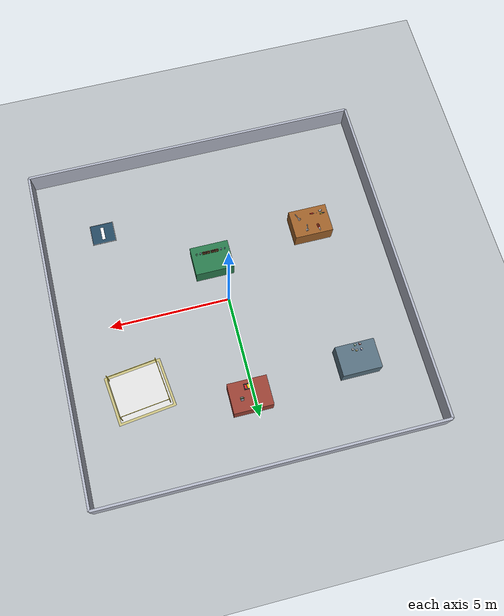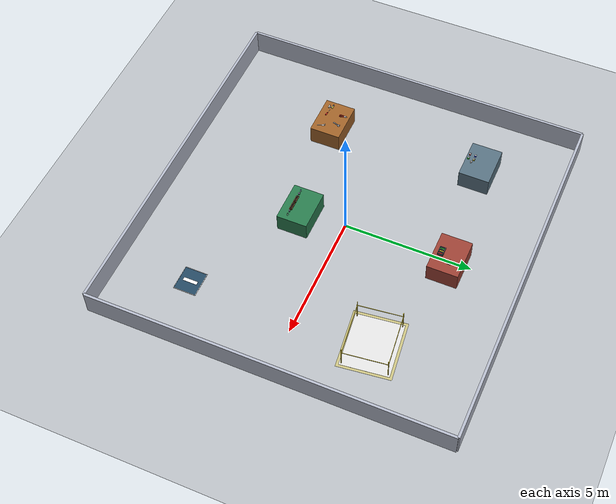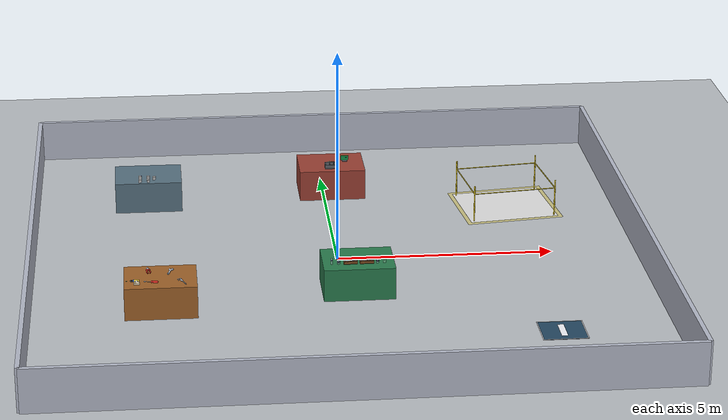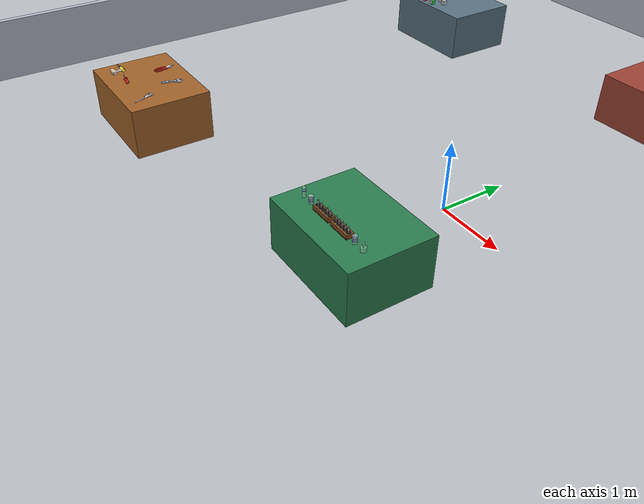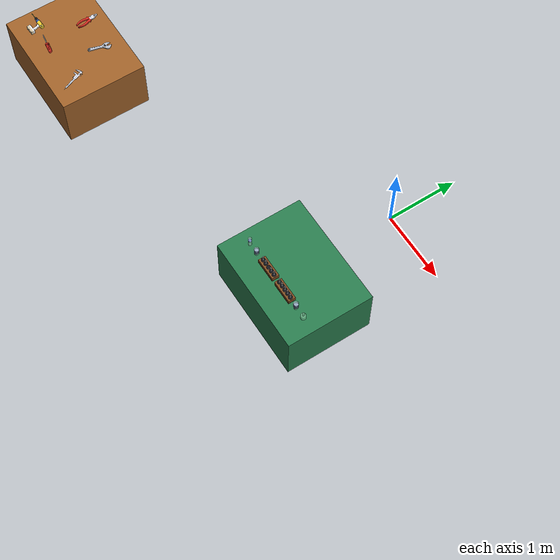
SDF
<?xml version="1.0"?>
<!--
  Lab standard environment (Gazebo Classic): five functional zones.
  Existing A->B chain is preserved at station_a / station_b while adding:
  inspection_zone, tooling_zone, and aging_zone.
-->
<sdf version="1.6">
  <world name="lab">
    <plugin name="gazebo_ros_state" filename="libgazebo_ros_state.so">
      <ros>
        <namespace>/gazebo</namespace>
      </ros>
      <update_rate>30.0</update_rate>
    </plugin>
    <plugin name="gazebo_ros_properties" filename="libgazebo_ros_properties.so">
      <ros>
        <namespace>/gazebo</namespace>
      </ros>
    </plugin>

    <light name="sun" type="directional">
      <cast_shadows>true</cast_shadows>
      <pose>0 0 10 0 0 0</pose>
      <diffuse>0.95 0.95 0.98 1</diffuse>
      <specular>0.90 0.90 0.92 1</specular>
      <direction>-0.28 0.24 -0.93</direction>
    </light>
    <scene>
      <ambient>0.42 0.44 0.46 1</ambient>
      <background>0.82 0.85 0.88 1</background>
      <shadows>true</shadows>
    </scene>

    <model name="ground_plane">
      <static>true</static>
      <link name="link">
        <collision name="collision">
          <geometry><plane><normal>0 0 1</normal><size>30 30</size></plane></geometry>
          <surface><friction><ode><mu>1.0</mu><mu2>1.0</mu2></ode></friction></surface>
        </collision>
        <visual name="visual">
          <geometry><plane><normal>0 0 1</normal><size>30 30</size></plane></geometry>
          <material>
            <ambient>0.58 0.60 0.62 1</ambient>
            <diffuse>0.72 0.74 0.76 1</diffuse>
            <specular>0.95 0.95 0.95 1</specular>
            <shininess>80</shininess>
          </material>
        </visual>
      </link>
    </model>

    <model name="walls">
      <static>true</static>
      <link name="link">
        <collision name="c_n"><pose>0 7 0.5 0 0 0</pose><geometry><box><size>14 0.1 1</size></box></geometry></collision>
        <visual name="v_n"><pose>0 7 0.5 0 0 0</pose><geometry><box><size>14 0.1 1</size></box></geometry><material><diffuse>0.70 0.72 0.78 1</diffuse></material></visual>
        <collision name="c_s"><pose>0 -7 0.5 0 0 0</pose><geometry><box><size>14 0.1 1</size></box></geometry></collision>
        <visual name="v_s"><pose>0 -7 0.5 0 0 0</pose><geometry><box><size>14 0.1 1</size></box></geometry><material><diffuse>0.70 0.72 0.78 1</diffuse></material></visual>
        <collision name="c_e"><pose>7 0 0.5 0 0 0</pose><geometry><box><size>0.1 14 1</size></box></geometry></collision>
        <visual name="v_e"><pose>7 0 0.5 0 0 0</pose><geometry><box><size>0.1 14 1</size></box></geometry><material><diffuse>0.70 0.72 0.78 1</diffuse></material></visual>
        <collision name="c_w"><pose>-7 0 0.5 0 0 0</pose><geometry><box><size>0.1 14 1</size></box></geometry></collision>
        <visual name="v_w"><pose>-7 0 0.5 0 0 0</pose><geometry><box><size>0.1 14 1</size></box></geometry><material><diffuse>0.70 0.72 0.78 1</diffuse></material></visual>
      </link>
    </model>

        <model name="station_a_table">
          <static>true</static>
          <pose>-4.30 3.80 0 0 0 0</pose>
          <link name="link">
            <collision name="collision">
              <pose>0 0 0.375 0 0 0</pose>
              <geometry><box><size>1.6 1.2 0.75</size></box></geometry>
              <surface><friction><ode><mu>1.0</mu><mu2>1.0</mu2></ode></friction></surface>
            </collision>
            <visual name="visual">
              <pose>0 0 0.375 0 0 0</pose>
              <geometry><box><size>1.6 1.2 0.75</size></box></geometry>
              <material>
                <ambient>0.22 0.28 0.33 1</ambient>
                <diffuse>0.34 0.44 0.50 1</diffuse>
                <specular>0.06 0.06 0.06 1</specular>
                <shininess>8</shininess>
              </material>
            </visual>
          </link>
        </model>

        <model name="tooling_zone_table">
          <static>true</static>
          <pose>-4.10 -2.30 0 0 0 0</pose>
          <link name="link">
            <collision name="collision">
              <pose>0 0 0.375 0 0 0</pose>
              <geometry><box><size>1.6 1.2 0.75</size></box></geometry>
              <surface><friction><ode><mu>1.0</mu><mu2>1.0</mu2></ode></friction></surface>
            </collision>
            <visual name="visual">
              <pose>0 0 0.375 0 0 0</pose>
              <geometry><box><size>1.6 1.2 0.75</size></box></geometry>
              <material>
                <ambient>0.36 0.24 0.10 1</ambient>
                <diffuse>0.62 0.38 0.16 1</diffuse>
                <specular>0.06 0.06 0.06 1</specular>
                <shininess>8</shininess>
              </material>
            </visual>
          </link>
        </model>

        <model name="aging_zone_table">
          <static>true</static>
          <pose>0.20 4.20 0 0 0 0</pose>
          <link name="link">
            <collision name="collision">
              <pose>0 0 0.375 0 0 0</pose>
              <geometry><box><size>1.6 1.2 0.75</size></box></geometry>
              <surface><friction><ode><mu>1.0</mu><mu2>1.0</mu2></ode></friction></surface>
            </collision>
            <visual name="visual">
              <pose>0 0 0.375 0 0 0</pose>
              <geometry><box><size>1.6 1.2 0.75</size></box></geometry>
              <material>
                <ambient>0.33 0.16 0.12 1</ambient>
                <diffuse>0.60 0.25 0.20 1</diffuse>
                <specular>0.06 0.06 0.06 1</specular>
                <shininess>8</shininess>
              </material>
            </visual>
          </link>
        </model>

        <model name="station_b_table">
          <static>true</static>
          <pose>0.30 -1.70 0 0 0 0</pose>
          <link name="link">
            <collision name="collision">
              <pose>0 0 0.375 0 0 0</pose>
              <geometry><box><size>1.6 1.2 0.75</size></box></geometry>
              <surface><friction><ode><mu>1.0</mu><mu2>1.0</mu2></ode></friction></surface>
            </collision>
            <visual name="visual">
              <pose>0 0 0.375 0 0 0</pose>
              <geometry><box><size>1.6 1.2 0.75</size></box></geometry>
              <material>
                <ambient>0.10 0.25 0.18 1</ambient>
                <diffuse>0.16 0.48 0.30 1</diffuse>
                <specular>0.06 0.06 0.06 1</specular>
                <shininess>8</shininess>
              </material>
            </visual>
          </link>
        </model>

        <model name="home_zone_pad">
          <static>true</static>
          <pose>4.50 -4.20 0 0 0 0</pose>
          <link name="link">
            <visual name="pad_fill">
              <pose>0 0 0.002 0 0 0</pose>
              <geometry><box><size>1.00 0.90 0.004</size></box></geometry>
              <material>
                <ambient>0.09 0.18 0.25 0.95</ambient>
                <diffuse>0.14 0.28 0.38 0.95</diffuse>
                <specular>0.04 0.04 0.04 1</specular>
              </material>
            </visual>
            <visual name="pad_border_n">
              <pose>0 0.44 0.004 0 0 0</pose>
              <geometry><box><size>1.00 0.02 0.008</size></box></geometry>
              <material><ambient>0.92 0.92 0.94 1</ambient><diffuse>0.96 0.96 0.98 1</diffuse></material>
            </visual>
            <visual name="pad_border_s">
              <pose>0 -0.44 0.004 0 0 0</pose>
              <geometry><box><size>1.00 0.02 0.008</size></box></geometry>
              <material><ambient>0.92 0.92 0.94 1</ambient><diffuse>0.96 0.96 0.98 1</diffuse></material>
            </visual>
            <visual name="pad_border_e">
              <pose>0.49 0 0.004 0 0 0</pose>
              <geometry><box><size>0.02 0.86 0.008</size></box></geometry>
              <material><ambient>0.92 0.92 0.94 1</ambient><diffuse>0.96 0.96 0.98 1</diffuse></material>
            </visual>
            <visual name="pad_border_w">
              <pose>-0.49 0 0.004 0 0 0</pose>
              <geometry><box><size>0.02 0.86 0.008</size></box></geometry>
              <material><ambient>0.92 0.92 0.94 1</ambient><diffuse>0.96 0.96 0.98 1</diffuse></material>
            </visual>
            <visual name="pad_centerline">
              <pose>0 0 0.004 0 0 0</pose>
              <geometry><box><size>0.14 0.56 0.008</size></box></geometry>
              <material><ambient>0.92 0.92 0.94 1</ambient><diffuse>0.96 0.96 0.98 1</diffuse></material>
            </visual>
          </link>
        </model>

    <include>
      <uri>model://aruco_sample</uri>
      <name>aruco_sample</name>
      <pose>-4.16 3.46 0.785 0 0 0.10</pose>
    </include>
    <include>
      <uri>model://material_cube_red</uri>
      <name>material_cube_red</name>
      <pose>-4.50 3.30 0.785 0 0 0</pose>
    </include>
    <include>
      <uri>model://material_cube_green</uri>
      <name>material_cube_green</name>
      <pose>-4.30 3.30 0.785 0 0 0</pose>
    </include>
    <include>
      <uri>model://material_cube_blue</uri>
      <name>material_cube_blue</name>
      <pose>-4.50 3.52 0.785 0 0 0</pose>
    </include>
    <include>
      <uri>model://material_cube_yellow</uri>
      <name>material_cube_yellow</name>
      <pose>-4.30 3.52 0.785 0 0 0</pose>
    </include>
    <include>
      <uri>model://fixture_box_plain</uri>
      <name>tooling_fixture_box</name>
      <pose>-3.88 -2.04 0.758 0 0 -0.28</pose>
    </include>
    <include>
      <uri>model://tooling_hand_tools</uri>
      <name>tooling_hand_tools</name>
      <pose>-4.36 -1.96 0.761 0 0 0.12</pose>
    </include>
    <include>
      <uri>model://pcb_test_fixture</uri>
      <name>board_test_fixture</name>
      <pose>-4.70 -2.60 0.7776 0 0 0.05</pose>
    </include>
    <include>
      <uri>model://safety_probe_kit</uri>
      <name>high_voltage_probe_kit</name>
      <pose>-4.30 -2.60 0.75 0 0 -0.15</pose>
    </include>
    <include>
      <uri>model://igbt_module_plain</uri>
      <name>material_spare_igbt</name>
      <pose>-3.62 -2.60 0.753 0 0 0.38</pose>
    </include>
    <include>
      <uri>model://aging_rack</uri>
      <name>aging_rack</name>
      <pose>0.20 3.88 0.80 0 0 0</pose>
    </include>
    <include>
      <uri>model://pcb_board</uri>
      <name>pcb_board</name>
      <pose>0.55 4.30 0.75 0 0 0</pose>
    </include>
    <include>
      <uri>model://test_tube_rack</uri>
      <name>test_tube_rack_1</name>
      <pose>0.48 -1.95 0.75 0 0 0</pose>
    </include>
    <include>
      <uri>model://test_tube_rack</uri>
      <name>test_tube_rack_2</name>
      <pose>0.12 -1.95 0.75 0 0 0</pose>
    </include>
    <include>
      <uri>model://test_tube</uri>
      <name>test_tube_1</name>
      <pose>0.36 -1.95 0.762 0 0 0</pose>
    </include>
    <include>
      <uri>model://test_tube</uri>
      <name>test_tube_2</name>
      <pose>0.42 -1.95 0.762 0 0 0</pose>
    </include>
    <include>
      <uri>model://test_tube</uri>
      <name>test_tube_3</name>
      <pose>0.48 -1.95 0.762 0 0 0</pose>
    </include>
    <include>
      <uri>model://test_tube</uri>
      <name>test_tube_4</name>
      <pose>0.54 -1.95 0.762 0 0 0</pose>
    </include>
    <include>
      <uri>model://test_tube</uri>
      <name>test_tube_5</name>
      <pose>0.60 -1.95 0.762 0 0 0</pose>
    </include>
    <include>
      <uri>model://test_tube</uri>
      <name>test_tube_6</name>
      <pose>0.00 -1.95 0.762 0 0 0</pose>
    </include>
    <include>
      <uri>model://test_tube</uri>
      <name>test_tube_7</name>
      <pose>0.06 -1.95 0.762 0 0 0</pose>
    </include>
    <include>
      <uri>model://test_tube</uri>
      <name>test_tube_8</name>
      <pose>0.18 -1.95 0.762 0 0 0</pose>
    </include>
    <include>
      <uri>model://test_tube</uri>
      <name>test_tube_9</name>
      <pose>0.24 -1.95 0.762 0 0 0</pose>
    </include>
    <include>
      <uri>model://graduated_cylinder</uri>
      <name>graduated_cylinder</name>
      <pose>-0.30 -1.95 0.82 0 0 0</pose>
    </include>
    <include>
      <uri>model://beaker</uri>
      <name>beaker_2</name>
      <pose>-0.15 -1.95 0.75 0 0 0</pose>
    </include>
    <include>
      <uri>model://beaker</uri>
      <name>beaker_1</name>
      <pose>0.72 -1.95 0.75 0 0 0</pose>
    </include>
    <include>
      <uri>model://erlenmeyer_flask</uri>
      <name>erlenmeyer_flask</name>
      <pose>0.88 -1.95 0.75 0 0 0</pose>
    </include>

    <include>
      <uri>model://high_voltage_zone</uri>
      <name>high_voltage_zone</name>
      <pose>4.36 2.90 0 0 0 0.12</pose>
    </include>

    <physics name="default_physics" type="ode">
      <max_step_size>0.001</max_step_size>
      <real_time_factor>1.0</real_time_factor>
      <real_time_update_rate>1000</real_time_update_rate>
    </physics>
  </world>
</sdf>

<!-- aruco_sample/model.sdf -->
<sdf version="1.6">
  <model name="aruco_sample">
    <link name="link">
      <inertial>
        <mass>0.05</mass>
        <inertia>
          <ixx>4.0e-5</ixx><ixy>0</ixy><ixz>0</ixz>
          <iyy>4.0e-5</iyy><iyz>0</iyz><izz>4.0e-5</izz>
        </inertia>
      </inertial>
      <collision name="collision">
        <geometry><box><size>0.07 0.07 0.07</size></box></geometry>
        <surface>
          <friction><ode><mu>1.0</mu><mu2>1.0</mu2></ode></friction>
          <contact>
            <ode>
              <kp>1e6</kp>
              <kd>1.0</kd>
              <min_depth>0.001</min_depth>
              <max_vel>0.01</max_vel>
            </ode>
          </contact>
        </surface>
      </collision>
      <visual name="body_visual">
        <geometry><box><size>0.07 0.07 0.07</size></box></geometry>
        <material>
          <ambient>0.85 0.85 0.85 1</ambient>
          <diffuse>0.85 0.85 0.85 1</diffuse>
        </material>
      </visual>
      <visual name="aruco_marker_front">
        <pose>0 -0.0355 0 0 0 0</pose>
        <geometry>
          <box><size>0.07 0.001 0.07</size></box>
        </geometry>
        <material>
          <script>
            <uri>model://aruco_sample/materials/scripts</uri>
            <uri>model://aruco_sample/materials/textures</uri>
            <name>ArucoSample/Marker</name>
          </script>
        </material>
      </visual>
      <visual name="aruco_marker_top">
        <pose>0 0 0.0355 0 0 0</pose>
        <geometry>
          <box><size>0.07 0.07 0.001</size></box>
        </geometry>
        <material>
          <script>
            <uri>model://aruco_sample/materials/scripts</uri>
            <uri>model://aruco_sample/materials/textures</uri>
            <name>ArucoSample/MarkerTop</name>
          </script>
        </material>
      </visual>
    </link>
  </model>
</sdf>

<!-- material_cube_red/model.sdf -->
<sdf version="1.6">
  <model name="material_cube_red">
    <link name="link">
      <inertial>
        <mass>0.05</mass>
        <inertia>
          <ixx>4.0e-5</ixx><ixy>0</ixy><ixz>0</ixz>
          <iyy>4.0e-5</iyy><iyz>0</iyz><izz>4.0e-5</izz>
        </inertia>
      </inertial>
      <collision name="collision">
        <geometry><box><size>0.07 0.07 0.07</size></box></geometry>
        <surface>
          <friction><ode><mu>1.0</mu><mu2>1.0</mu2></ode></friction>
          <contact>
            <ode>
              <kp>1e6</kp>
              <kd>1.0</kd>
              <min_depth>0.001</min_depth>
              <max_vel>0.01</max_vel>
            </ode>
          </contact>
        </surface>
      </collision>
      <visual name="body_visual">
        <geometry><box><size>0.07 0.07 0.07</size></box></geometry>
        <material>
          <ambient>0.92 0.10 0.10 1</ambient>
          <diffuse>0.92 0.10 0.10 1</diffuse>
        </material>
      </visual>
      <visual name="aruco_marker_front">
        <pose>0 -0.0355 0 0 0 0</pose>
        <geometry>
          <box><size>0.07 0.001 0.07</size></box>
        </geometry>
        <material>
          <script>
            <uri>model://material_cube_red/materials/scripts</uri>
            <uri>model://material_cube_red/materials/textures</uri>
            <name>MaterialCubeRed/Marker</name>
          </script>
        </material>
      </visual>
      <visual name="aruco_marker_top">
        <pose>0 0 0.0355 0 0 0</pose>
        <geometry>
          <box><size>0.07 0.07 0.001</size></box>
        </geometry>
        <material>
          <script>
            <uri>model://material_cube_red/materials/scripts</uri>
            <uri>model://material_cube_red/materials/textures</uri>
            <name>MaterialCubeRed/MarkerTop</name>
          </script>
        </material>
      </visual>
    </link>
  </model>
</sdf>

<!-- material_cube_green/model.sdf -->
<sdf version="1.6">
  <model name="material_cube_green">
    <link name="link">
      <inertial>
        <mass>0.05</mass>
        <inertia>
          <ixx>4.0e-5</ixx><ixy>0</ixy><ixz>0</ixz>
          <iyy>4.0e-5</iyy><iyz>0</iyz><izz>4.0e-5</izz>
        </inertia>
      </inertial>
      <collision name="collision">
        <geometry><box><size>0.07 0.07 0.07</size></box></geometry>
        <surface>
          <friction><ode><mu>1.0</mu><mu2>1.0</mu2></ode></friction>
          <contact>
            <ode>
              <kp>1e6</kp>
              <kd>1.0</kd>
              <min_depth>0.001</min_depth>
              <max_vel>0.01</max_vel>
            </ode>
          </contact>
        </surface>
      </collision>
      <visual name="body_visual">
        <geometry><box><size>0.07 0.07 0.07</size></box></geometry>
        <material>
          <ambient>0.10 0.85 0.15 1</ambient>
          <diffuse>0.10 0.85 0.15 1</diffuse>
        </material>
      </visual>
      <visual name="aruco_marker_front">
        <pose>0 -0.0355 0 0 0 0</pose>
        <geometry>
          <box><size>0.07 0.001 0.07</size></box>
        </geometry>
        <material>
          <script>
            <uri>model://material_cube_green/materials/scripts</uri>
            <uri>model://material_cube_green/materials/textures</uri>
            <name>MaterialCubeGreen/Marker</name>
          </script>
        </material>
      </visual>
      <visual name="aruco_marker_top">
        <pose>0 0 0.0355 0 0 0</pose>
        <geometry>
          <box><size>0.07 0.07 0.001</size></box>
        </geometry>
        <material>
          <script>
            <uri>model://material_cube_green/materials/scripts</uri>
            <uri>model://material_cube_green/materials/textures</uri>
            <name>MaterialCubeGreen/MarkerTop</name>
          </script>
        </material>
      </visual>
    </link>
  </model>
</sdf>

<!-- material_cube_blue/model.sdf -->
<sdf version="1.6">
  <model name="material_cube_blue">
    <link name="link">
      <inertial>
        <mass>0.05</mass>
        <inertia>
          <ixx>4.0e-5</ixx><ixy>0</ixy><ixz>0</ixz>
          <iyy>4.0e-5</iyy><iyz>0</iyz><izz>4.0e-5</izz>
        </inertia>
      </inertial>
      <collision name="collision">
        <geometry><box><size>0.07 0.07 0.07</size></box></geometry>
        <surface>
          <friction><ode><mu>1.0</mu><mu2>1.0</mu2></ode></friction>
          <contact>
            <ode>
              <kp>1e6</kp>
              <kd>1.0</kd>
              <min_depth>0.001</min_depth>
              <max_vel>0.01</max_vel>
            </ode>
          </contact>
        </surface>
      </collision>
      <visual name="body_visual">
        <geometry><box><size>0.07 0.07 0.07</size></box></geometry>
        <material>
          <ambient>0.10 0.15 0.90 1</ambient>
          <diffuse>0.10 0.15 0.90 1</diffuse>
        </material>
      </visual>
      <visual name="aruco_marker_front">
        <pose>0 -0.0355 0 0 0 0</pose>
        <geometry>
          <box><size>0.07 0.001 0.07</size></box>
        </geometry>
        <material>
          <script>
            <uri>model://material_cube_blue/materials/scripts</uri>
            <uri>model://material_cube_blue/materials/textures</uri>
            <name>MaterialCubeBlue/Marker</name>
          </script>
        </material>
      </visual>
      <visual name="aruco_marker_top">
        <pose>0 0 0.0355 0 0 0</pose>
        <geometry>
          <box><size>0.07 0.07 0.001</size></box>
        </geometry>
        <material>
          <script>
            <uri>model://material_cube_blue/materials/scripts</uri>
            <uri>model://material_cube_blue/materials/textures</uri>
            <name>MaterialCubeBlue/MarkerTop</name>
          </script>
        </material>
      </visual>
    </link>
  </model>
</sdf>

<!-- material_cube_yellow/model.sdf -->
<sdf version="1.6">
  <model name="material_cube_yellow">
    <link name="link">
      <inertial>
        <mass>0.05</mass>
        <inertia>
          <ixx>4.0e-5</ixx><ixy>0</ixy><ixz>0</ixz>
          <iyy>4.0e-5</iyy><iyz>0</iyz><izz>4.0e-5</izz>
        </inertia>
      </inertial>
      <collision name="collision">
        <geometry><box><size>0.07 0.07 0.07</size></box></geometry>
        <surface>
          <friction><ode><mu>1.0</mu><mu2>1.0</mu2></ode></friction>
          <contact>
            <ode>
              <kp>1e6</kp>
              <kd>1.0</kd>
              <min_depth>0.001</min_depth>
              <max_vel>0.01</max_vel>
            </ode>
          </contact>
        </surface>
      </collision>
      <visual name="body_visual">
        <geometry><box><size>0.07 0.07 0.07</size></box></geometry>
        <material>
          <ambient>0.92 0.85 0.10 1</ambient>
          <diffuse>0.92 0.85 0.10 1</diffuse>
        </material>
      </visual>
      <visual name="aruco_marker_front">
        <pose>0 -0.0355 0 0 0 0</pose>
        <geometry>
          <box><size>0.07 0.001 0.07</size></box>
        </geometry>
        <material>
          <script>
            <uri>model://material_cube_yellow/materials/scripts</uri>
            <uri>model://material_cube_yellow/materials/textures</uri>
            <name>MaterialCubeYellow/Marker</name>
          </script>
        </material>
      </visual>
      <visual name="aruco_marker_top">
        <pose>0 0 0.0355 0 0 0</pose>
        <geometry>
          <box><size>0.07 0.07 0.001</size></box>
        </geometry>
        <material>
          <script>
            <uri>model://material_cube_yellow/materials/scripts</uri>
            <uri>model://material_cube_yellow/materials/textures</uri>
            <name>MaterialCubeYellow/MarkerTop</name>
          </script>
        </material>
      </visual>
    </link>
  </model>
</sdf>

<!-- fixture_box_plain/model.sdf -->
<sdf version="1.6">
  <model name="fixture_box_plain">
    <link name="link">
      <inertial><mass>1.28</mass><inertia><ixx>0.01216</ixx><ixy>0</ixy><ixz>0</ixz><iyy>0.00256</iyy><iyz>0</iyz><izz>0.01408</izz></inertia></inertial>
      <collision name="collision"><pose>0 0 0.092 0 0 0</pose><geometry><mesh><uri>model://fixture_box_plain/meshes/adjustable_wrench.dae</uri><scale>2 2 2</scale></mesh></geometry><surface><friction><ode><mu>1.0</mu><mu2>1.0</mu2></ode></friction><contact><ode><kp>1e6</kp><kd>1.0</kd><min_depth>0.001</min_depth><max_vel>0.01</max_vel></ode></contact></surface></collision>
      <visual name="imported_tool_mesh"><pose>0 0 0.092 0 0 0</pose><geometry><mesh><uri>model://fixture_box_plain/meshes/adjustable_wrench.dae</uri><scale>2 2 2</scale></mesh></geometry></visual>
    </link>
  </model>
</sdf>

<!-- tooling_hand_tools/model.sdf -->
<sdf version="1.6">
  <model name="tooling_hand_tools">
    <link name="link">
      <inertial><mass>1.12</mass><inertia><ixx>0.01152</ixx><ixy>0</ixy><ixz>0</ixz><iyy>0.00256</iyy><iyz>0</iyz><izz>0.01344</izz></inertia></inertial>
      <collision name="collision"><pose>0 0 -0.011 0 0 0</pose><geometry><mesh><uri>model://tooling_hand_tools/meshes/pliers_closed.dae</uri><scale>2 2 2</scale></mesh></geometry><surface><friction><ode><mu>1.0</mu><mu2>1.0</mu2></ode></friction><contact><ode><kp>1e6</kp><kd>1.0</kd><min_depth>0.001</min_depth><max_vel>0.01</max_vel></ode></contact></surface></collision>
      <visual name="imported_tool_mesh"><pose>0 0 -0.011 0 0 0</pose><geometry><mesh><uri>model://tooling_hand_tools/meshes/pliers_closed.dae</uri><scale>2 2 2</scale></mesh></geometry></visual>
    </link>
  </model>
</sdf>

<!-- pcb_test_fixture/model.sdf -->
<sdf version="1.6">
  <model name="pcb_test_fixture">
    <link name="link">
      <inertial><mass>3.60</mass><inertia><ixx>0.02400</ixx><ixy>0</ixy><ixz>0</ixz><iyy>0.03840</iyy><iyz>0</iyz><izz>0.04640</izz></inertia></inertial>
      <collision name="collision"><pose>0 0 -0.0276 0 0 0</pose><geometry><mesh><uri>model://pcb_test_fixture/meshes/drill.dae</uri><scale>2 2 2</scale></mesh></geometry><surface><friction><ode><mu>1.0</mu><mu2>1.0</mu2></ode></friction><contact><ode><kp>1e6</kp><kd>1.0</kd><min_depth>0.001</min_depth><max_vel>0.01</max_vel></ode></contact></surface></collision>
      <visual name="imported_tool_mesh"><pose>0 0 -0.0276 0 0 0</pose><geometry><mesh><uri>model://pcb_test_fixture/meshes/drill.dae</uri><scale>2 2 2</scale></mesh></geometry></visual>
    </link>
  </model>
</sdf>

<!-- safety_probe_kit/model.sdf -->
<sdf version="1.6">
  <model name="safety_probe_kit">
    <link name="link">
      <inertial><mass>0.64</mass><inertia><ixx>0.00160</ixx><ixy>0</ixy><ixz>0</ixz><iyy>0.00768</iyy><iyz>0</iyz><izz>0.00768</izz></inertia></inertial>
      <collision name="collision"><geometry><mesh><uri>model://safety_probe_kit/meshes/screwdriver.dae</uri><scale>2 2 2</scale></mesh></geometry><surface><friction><ode><mu>1.0</mu><mu2>1.0</mu2></ode></friction><contact><ode><kp>1e6</kp><kd>1.0</kd><min_depth>0.001</min_depth><max_vel>0.01</max_vel></ode></contact></surface></collision>
      <visual name="imported_tool_mesh"><geometry><mesh><uri>model://safety_probe_kit/meshes/screwdriver.dae</uri><scale>2 2 2</scale></mesh></geometry></visual>
    </link>
  </model>
</sdf>

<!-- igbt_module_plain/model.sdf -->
<sdf version="1.6">
  <model name="igbt_module_plain">
    <link name="link">
      <inertial><mass>0.96</mass><inertia><ixx>0.01120</ixx><ixy>0</ixy><ixz>0</ixz><iyy>0.00256</iyy><iyz>0</iyz><izz>0.01344</izz></inertia></inertial>
      <collision name="collision"><pose>0 0 0.057 0 0 0</pose><geometry><mesh><uri>model://igbt_module_plain/meshes/digital_caliper.dae</uri><scale>2 2 2</scale></mesh></geometry><surface><friction><ode><mu>1.0</mu><mu2>1.0</mu2></ode></friction><contact><ode><kp>1e6</kp><kd>1.0</kd><min_depth>0.001</min_depth><max_vel>0.01</max_vel></ode></contact></surface></collision>
      <visual name="imported_tool_mesh"><pose>0 0 0.057 0 0 0</pose><geometry><mesh><uri>model://igbt_module_plain/meshes/digital_caliper.dae</uri><scale>2 2 2</scale></mesh></geometry></visual>
    </link>
  </model>
</sdf>

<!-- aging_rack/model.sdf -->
<sdf version="1.6">
  <model name="aging_rack">
    <static>true</static>
    <link name="link">
      <!-- 空心三槽架:薄底板 + 四周墙 + 两块隔板。 -->
      <collision name="collision_bottom">
        <pose>0 0 -0.04 0 0 0</pose>
        <geometry><box><size>0.34 0.22 0.02</size></box></geometry>
        <surface><friction><ode><mu>1.0</mu><mu2>1.0</mu2></ode></friction></surface>
      </collision>
      <collision name="collision_wall_front">
        <pose>0 0.10 0.01 0 0 0</pose>
        <geometry><box><size>0.34 0.02 0.08</size></box></geometry>
        <surface><friction><ode><mu>1.0</mu><mu2>1.0</mu2></ode></friction></surface>
      </collision>
      <collision name="collision_wall_back">
        <pose>0 -0.10 0.01 0 0 0</pose>
        <geometry><box><size>0.34 0.02 0.08</size></box></geometry>
        <surface><friction><ode><mu>1.0</mu><mu2>1.0</mu2></ode></friction></surface>
      </collision>
      <collision name="collision_wall_left">
        <pose>-0.16 0 0.01 0 0 0</pose>
        <geometry><box><size>0.02 0.18 0.08</size></box></geometry>
        <surface><friction><ode><mu>1.0</mu><mu2>1.0</mu2></ode></friction></surface>
      </collision>
      <collision name="collision_wall_right">
        <pose>0.16 0 0.01 0 0 0</pose>
        <geometry><box><size>0.02 0.18 0.08</size></box></geometry>
        <surface><friction><ode><mu>1.0</mu><mu2>1.0</mu2></ode></friction></surface>
      </collision>
      <collision name="collision_divider_left">
        <pose>-0.0525 0 0.01 0 0 0</pose>
        <geometry><box><size>0.015 0.18 0.08</size></box></geometry>
        <surface><friction><ode><mu>1.0</mu><mu2>1.0</mu2></ode></friction></surface>
      </collision>
      <collision name="collision_divider_right">
        <pose>0.0525 0 0.01 0 0 0</pose>
        <geometry><box><size>0.015 0.18 0.08</size></box></geometry>
        <surface><friction><ode><mu>1.0</mu><mu2>1.0</mu2></ode></friction></surface>
      </collision>
      <visual name="base_bottom">
        <pose>0 0 -0.04 0 0 0</pose>
        <geometry><box><size>0.34 0.22 0.02</size></box></geometry>
        <material><ambient>0.20 0.20 0.22 1</ambient><diffuse>0.36 0.38 0.40 1</diffuse></material>
      </visual>
      <visual name="wall_front">
        <pose>0 0.10 0.01 0 0 0</pose>
        <geometry><box><size>0.34 0.02 0.08</size></box></geometry>
        <material><ambient>0.20 0.20 0.22 1</ambient><diffuse>0.36 0.38 0.40 1</diffuse></material>
      </visual>
      <visual name="wall_back">
        <pose>0 -0.10 0.01 0 0 0</pose>
        <geometry><box><size>0.34 0.02 0.08</size></box></geometry>
        <material><ambient>0.20 0.20 0.22 1</ambient><diffuse>0.36 0.38 0.40 1</diffuse></material>
      </visual>
      <visual name="wall_left">
        <pose>-0.16 0 0.01 0 0 0</pose>
        <geometry><box><size>0.02 0.18 0.08</size></box></geometry>
        <material><ambient>0.20 0.20 0.22 1</ambient><diffuse>0.36 0.38 0.40 1</diffuse></material>
      </visual>
      <visual name="wall_right">
        <pose>0.16 0 0.01 0 0 0</pose>
        <geometry><box><size>0.02 0.18 0.08</size></box></geometry>
        <material><ambient>0.20 0.20 0.22 1</ambient><diffuse>0.36 0.38 0.40 1</diffuse></material>
      </visual>
      <visual name="divider_left">
        <pose>-0.0525 0 0.01 0 0 0</pose>
        <geometry><box><size>0.015 0.18 0.08</size></box></geometry>
        <material><ambient>0.20 0.20 0.22 1</ambient><diffuse>0.36 0.38 0.40 1</diffuse></material>
      </visual>
      <visual name="divider_right">
        <pose>0.0525 0 0.01 0 0 0</pose>
        <geometry><box><size>0.015 0.18 0.08</size></box></geometry>
        <material><ambient>0.20 0.20 0.22 1</ambient><diffuse>0.36 0.38 0.40 1</diffuse></material>
      </visual>
      <visual name="slot_left">
        <pose>-0.105 0 -0.028 0 0 0</pose>
        <geometry><box><size>0.088 0.176 0.004</size></box></geometry>
        <material><ambient>0.08 0.70 0.12 1</ambient><diffuse>0.12 0.90 0.18 1</diffuse></material>
      </visual>
      <visual name="slot_mid">
        <pose>0 0 -0.028 0 0 0</pose>
        <geometry><box><size>0.088 0.176 0.004</size></box></geometry>
        <material><ambient>0.70 0.60 0.08 1</ambient><diffuse>0.95 0.82 0.12 1</diffuse></material>
      </visual>
      <visual name="slot_right">
        <pose>0.105 0 -0.028 0 0 0</pose>
        <geometry><box><size>0.088 0.176 0.004</size></box></geometry>
        <material><ambient>0.74 0.10 0.10 1</ambient><diffuse>0.92 0.16 0.16 1</diffuse></material>
      </visual>
      <visual name="status_panel">
        <pose>0 0.111 0.03 1.57079 0 0</pose>
        <geometry><box><size>0.20 0.05 0.002</size></box></geometry>
        <material><ambient>0.88 0.88 0.88 1</ambient><diffuse>0.92 0.92 0.92 1</diffuse></material>
      </visual>
      <visual name="status_green">
        <pose>-0.05 0.112 0.05 1.57079 0 0</pose>
        <geometry><cylinder><radius>0.015</radius><length>0.003</length></cylinder></geometry>
        <material><ambient>0.08 0.70 0.12 1</ambient><diffuse>0.12 0.90 0.18 1</diffuse></material>
      </visual>
      <visual name="status_yellow">
        <pose>0.0 0.112 0.05 1.57079 0 0</pose>
        <geometry><cylinder><radius>0.015</radius><length>0.003</length></cylinder></geometry>
        <material><ambient>0.70 0.60 0.08 1</ambient><diffuse>0.95 0.82 0.12 1</diffuse></material>
      </visual>
      <visual name="status_red">
        <pose>0.05 0.112 0.05 1.57079 0 0</pose>
        <geometry><cylinder><radius>0.015</radius><length>0.003</length></cylinder></geometry>
        <material><ambient>0.74 0.10 0.10 1</ambient><diffuse>0.92 0.16 0.16 1</diffuse></material>
      </visual>
    </link>
  </model>
</sdf>

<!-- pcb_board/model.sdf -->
<sdf version="1.6">
  <!-- 板卡(可抓取):PCB 板面 + 底部支撑脚自立,金手指视觉,板厚 0.008 < 夹爪开度可侧向夹取。 -->
  <model name="pcb_board">
    <link name="link">
      <inertial>
        <mass>0.08</mass>
        <inertia>
          <ixx>1.8e-4</ixx><ixy>0</ixy><ixz>0</ixz>
          <iyy>1.6e-4</iyy><iyz>0</iyz><izz>3.0e-4</izz>
        </inertia>
      </inertial>
      <!-- 底部支撑脚(自立) -->
      <collision name="collision_base">
        <pose>0 0 0.0075 0 0 0</pose>
        <geometry><box><size>0.12 0.16 0.015</size></box></geometry>
        <surface>
          <friction><ode><mu>1.0</mu><mu2>1.0</mu2></ode></friction>
          <contact>
            <ode>
              <kp>1e6</kp>
              <kd>1.0</kd>
              <min_depth>0.001</min_depth>
              <max_vel>0.01</max_vel>
            </ode>
          </contact>
        </surface>
      </collision>
      <visual name="visual_base">
        <pose>0 0 0.0075 0 0 0</pose>
        <geometry><box><size>0.12 0.16 0.015</size></box></geometry>
        <material>
          <ambient>0.25 0.25 0.28 1</ambient>
          <diffuse>0.42 0.44 0.48 1</diffuse>
          <specular>0.15 0.15 0.15 1</specular>
          <shininess>24</shininess>
        </material>
      </visual>
      <!-- PCB 板面(立起,朝 ±y) -->
      <collision name="collision_board">
        <pose>0 0 0.078 0 0 0</pose>
        <geometry><box><size>0.18 0.008 0.12</size></box></geometry>
        <surface>
          <friction><ode><mu>1.0</mu><mu2>1.0</mu2></ode></friction>
          <contact>
            <ode>
              <kp>1e6</kp>
              <kd>1.0</kd>
              <min_depth>0.001</min_depth>
              <max_vel>0.01</max_vel>
            </ode>
          </contact>
        </surface>
      </collision>
      <visual name="visual_board">
        <pose>0 0 0.078 0 0 0</pose>
        <geometry><box><size>0.18 0.008 0.12</size></box></geometry>
        <material>
          <ambient>0.05 0.35 0.18 1</ambient>
          <diffuse>0.08 0.55 0.28 1</diffuse>
          <specular>0.15 0.15 0.15 1</specular>
          <shininess>32</shininess>
        </material>
      </visual>
      <!-- 金手指条(顶缘视觉) -->
      <visual name="visual_gold_fingers">
        <pose>0 0 0.1385 0 0 0</pose>
        <geometry><box><size>0.18 0.010 0.012</size></box></geometry>
        <material>
          <ambient>0.78 0.62 0.20 1</ambient>
          <diffuse>0.95 0.78 0.28 1</diffuse>
          <specular>0.4 0.4 0.4 1</specular>
          <shininess>64</shininess>
        </material>
      </visual>
      <!-- 板面元件小凸起(视觉) -->
      <visual name="visual_component">
        <pose>0.04 0 0.09 0 0 0</pose>
        <geometry><box><size>0.03 0.012 0.015</size></box></geometry>
        <material>
          <ambient>0.10 0.10 0.12 1</ambient>
          <diffuse>0.18 0.18 0.20 1</diffuse>
        </material>
      </visual>
    </link>
  </model>
</sdf>

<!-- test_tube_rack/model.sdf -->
<sdf version="1.6">
  <!-- 试管架(静态环境道具):木块钻圆孔造型。
       视觉 = 实木块 + 5 个深色圆形孔口,呈现经典"木块圆孔"试管架;
       碰撞 = 隐藏内部的方形导孔(前/后墙 + 4 隔墙 + 2 端板),稳定引导外径 0.022 的玻璃试管下插。 -->
  <model name="test_tube_rack">
    <static>true</static>
    <link name="link">
      <!-- 底座板(顶面 z=0.012,试管即落于此) -->
      <collision name="collision_base">
        <pose>0 0 0.006 0 0 0</pose>
        <geometry><box><size>0.31 0.10 0.012</size></box></geometry>
        <surface>
          <friction><ode><mu>1.0</mu><mu2>1.0</mu2></ode></friction>
        </surface>
      </collision>
      <visual name="visual_base">
        <pose>0 0 0.006 0 0 0</pose>
        <geometry><box><size>0.31 0.10 0.012</size></box></geometry>
        <material>
          <ambient>0.30 0.18 0.07 1</ambient>
          <diffuse>0.50 0.30 0.13 1</diffuse>
          <specular>0.10 0.10 0.10 1</specular>
          <shininess>8</shininess>
        </material>
      </visual>

      <!-- ── 碰撞:木块内的方形导孔结构(z 中心 0.037,高 0.050) ── -->
      <!-- 前墙(y∈[0.022,0.050]) -->
      <collision name="collision_wall_front">
        <pose>0 0.036 0.037 0 0 0</pose>
        <geometry><box><size>0.31 0.028 0.050</size></box></geometry>
        <surface><friction><ode><mu>1.0</mu><mu2>1.0</mu2></ode></friction></surface>
      </collision>
      <!-- 后墙(y∈[-0.050,-0.022]) -->
      <collision name="collision_wall_back">
        <pose>0 -0.036 0.037 0 0 0</pose>
        <geometry><box><size>0.31 0.028 0.050</size></box></geometry>
        <surface><friction><ode><mu>1.0</mu><mu2>1.0</mu2></ode></friction></surface>
      </collision>
      <!-- 4 条隔墙,分隔 5 个导孔 -->
      <collision name="collision_divider_1">
        <pose>-0.09 0 0.037 0 0 0</pose>
        <geometry><box><size>0.020 0.044 0.050</size></box></geometry>
        <surface><friction><ode><mu>1.0</mu><mu2>1.0</mu2></ode></friction></surface>
      </collision>
      <collision name="collision_divider_2">
        <pose>-0.03 0 0.037 0 0 0</pose>
        <geometry><box><size>0.020 0.044 0.050</size></box></geometry>
        <surface><friction><ode><mu>1.0</mu><mu2>1.0</mu2></ode></friction></surface>
      </collision>
      <collision name="collision_divider_3">
        <pose>0.03 0 0.037 0 0 0</pose>
        <geometry><box><size>0.020 0.044 0.050</size></box></geometry>
        <surface><friction><ode><mu>1.0</mu><mu2>1.0</mu2></ode></friction></surface>
      </collision>
      <collision name="collision_divider_4">
        <pose>0.09 0 0.037 0 0 0</pose>
        <geometry><box><size>0.020 0.044 0.050</size></box></geometry>
        <surface><friction><ode><mu>1.0</mu><mu2>1.0</mu2></ode></friction></surface>
      </collision>
      <!-- 两端封板 -->
      <collision name="collision_endcap_1">
        <pose>-0.145 0 0.037 0 0 0</pose>
        <geometry><box><size>0.020 0.044 0.050</size></box></geometry>
        <surface><friction><ode><mu>1.0</mu><mu2>1.0</mu2></ode></friction></surface>
      </collision>
      <collision name="collision_endcap_2">
        <pose>0.145 0 0.037 0 0 0</pose>
        <geometry><box><size>0.020 0.044 0.050</size></box></geometry>
        <surface><friction><ode><mu>1.0</mu><mu2>1.0</mu2></ode></friction></surface>
      </collision>

      <!-- ── 视觉:实木块(z∈[0.012,0.062]),管下段被木块遮住,呈现"插入孔中" ── -->
      <visual name="visual_block">
        <pose>0 0 0.037 0 0 0</pose>
        <geometry><box><size>0.31 0.10 0.050</size></box></geometry>
        <material>
          <ambient>0.30 0.18 0.07 1</ambient>
          <diffuse>0.50 0.30 0.13 1</diffuse>
          <specular>0.10 0.10 0.10 1</specular>
          <shininess>8</shininess>
        </material>
      </visual>

      <!-- 5 个深色圆形孔口(视觉),孔心 x=-0.12..0.12 -->
      <visual name="visual_hole_1">
        <pose>-0.12 0 0.064 0 0 0</pose>
        <geometry><cylinder><radius>0.028</radius><length>0.003</length></cylinder></geometry>
        <material>
          <ambient>0.05 0.05 0.06 1</ambient>
          <diffuse>0.08 0.08 0.10 1</diffuse>
          <specular>0.05 0.05 0.05 1</specular>
          <shininess>4</shininess>
        </material>
      </visual>
      <visual name="visual_hole_2">
        <pose>-0.06 0 0.064 0 0 0</pose>
        <geometry><cylinder><radius>0.028</radius><length>0.003</length></cylinder></geometry>
        <material>
          <ambient>0.05 0.05 0.06 1</ambient>
          <diffuse>0.08 0.08 0.10 1</diffuse>
          <specular>0.05 0.05 0.05 1</specular>
          <shininess>4</shininess>
        </material>
      </visual>
      <visual name="visual_hole_3">
        <pose>0 0 0.064 0 0 0</pose>
        <geometry><cylinder><radius>0.028</radius><length>0.003</length></cylinder></geometry>
        <material>
          <ambient>0.05 0.05 0.06 1</ambient>
          <diffuse>0.08 0.08 0.10 1</diffuse>
          <specular>0.05 0.05 0.05 1</specular>
          <shininess>4</shininess>
        </material>
      </visual>
      <visual name="visual_hole_4">
        <pose>0.06 0 0.064 0 0 0</pose>
        <geometry><cylinder><radius>0.028</radius><length>0.003</length></cylinder></geometry>
        <material>
          <ambient>0.05 0.05 0.06 1</ambient>
          <diffuse>0.08 0.08 0.10 1</diffuse>
          <specular>0.05 0.05 0.05 1</specular>
          <shininess>4</shininess>
        </material>
      </visual>
      <visual name="visual_hole_5">
        <pose>0.12 0 0.064 0 0 0</pose>
        <geometry><cylinder><radius>0.028</radius><length>0.003</length></cylinder></geometry>
        <material>
          <ambient>0.05 0.05 0.06 1</ambient>
          <diffuse>0.08 0.08 0.10 1</diffuse>
          <specular>0.05 0.05 0.05 1</specular>
          <shininess>4</shininess>
        </material>
      </visual>

      <!-- 白色标签条(仅视觉) -->
      <visual name="visual_label">
        <pose>0 0.0505 0.040 0 0 0</pose>
        <geometry><box><size>0.20 0.006 0.004</size></box></geometry>
        <material>
          <ambient>0.90 0.90 0.92 1</ambient>
          <diffuse>0.96 0.96 0.98 1</diffuse>
          <specular>0.10 0.10 0.10 1</specular>
          <shininess>8</shininess>
        </material>
      </visual>
    </link>
  </model>
</sdf>

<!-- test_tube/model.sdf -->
<sdf version="1.6">
  <!-- 玻璃试管(可抓取):真玻璃材质,外径 0.022 < 夹爪开度,动态模型。
       玻璃:transparency 0.35 + double_sided + 高 specular/shininess;
       圆底 + 厚边管口 + 内部琥珀色液体,高保真。 -->
  <model name="test_tube">
    <link name="link">
      <inertial>
        <mass>0.02</mass>
        <inertia>
          <ixx>2.3e-5</ixx><ixy>0</ixy><ixz>0</ixz>
          <iyy>2.3e-5</iyy><iyz>0</iyz><izz>1.2e-6</izz>
        </inertia>
      </inertial>

      <!-- 碰撞:实体圆柱(外径 0.022,长 0.125,管底 z=0) -->
      <collision name="collision">
        <pose>0 0 0.0625 0 0 0</pose>
        <geometry>
          <cylinder>
            <radius>0.011</radius>
            <length>0.125</length>
          </cylinder>
        </geometry>
        <surface>
          <friction><ode><mu>1.0</mu><mu2>1.0</mu2></ode></friction>
          <contact>
            <ode>
              <kp>1e6</kp>
              <kd>1.0</kd>
              <min_depth>0.001</min_depth>
              <max_vel>0.01</max_vel>
            </ode>
          </contact>
        </surface>
      </collision>

      <!-- 管口厚边(碰撞,与 visual_lip 一致) -->
      <collision name="collision_lip">
        <pose>0 0 0.1225 0 0 0</pose>
        <geometry>
          <cylinder>
            <radius>0.013</radius>
            <length>0.005</length>
          </cylinder>
        </geometry>
        <surface>
          <friction><ode><mu>1.0</mu><mu2>1.0</mu2></ode></friction>
          <contact>
            <ode>
              <kp>1e6</kp>
              <kd>1.0</kd>
              <min_depth>0.001</min_depth>
              <max_vel>0.01</max_vel>
            </ode>
          </contact>
        </surface>
      </collision>

      <!-- 玻璃管身 -->
      <visual name="visual">
        <transparency>0.35</transparency>
        <pose>0 0 0.0625 0 0 0</pose>
        <geometry>
          <cylinder>
            <radius>0.011</radius>
            <length>0.125</length>
          </cylinder>
        </geometry>
        <material>
          <ambient>0.80 0.90 0.95 0.4</ambient>
          <diffuse>0.90 0.95 1.0 0.4</diffuse>
          <specular>1.0 1.0 1.0 1.0</specular>
          <shininess>128</shininess>
          <double_sided>true</double_sided>
        </material>
      </visual>

      <!-- 圆底(视觉球) -->
      <visual name="visual_round_bottom">
        <transparency>0.35</transparency>
        <pose>0 0 0.011 0 0 0</pose>
        <geometry>
          <sphere><radius>0.011</radius></sphere>
        </geometry>
        <material>
          <ambient>0.80 0.90 0.95 0.4</ambient>
          <diffuse>0.90 0.95 1.0 0.4</diffuse>
          <specular>1.0 1.0 1.0 1.0</specular>
          <shininess>128</shininess>
          <double_sided>true</double_sided>
        </material>
      </visual>

      <!-- 厚边管口(视觉) -->
      <visual name="visual_lip">
        <transparency>0.30</transparency>
        <pose>0 0 0.1225 0 0 0</pose>
        <geometry>
          <cylinder>
            <radius>0.013</radius>
            <length>0.005</length>
          </cylinder>
        </geometry>
        <material>
          <ambient>0.80 0.90 0.95 0.5</ambient>
          <diffuse>0.90 0.95 1.0 0.5</diffuse>
          <specular>1.0 1.0 1.0 1.0</specular>
          <shininess>128</shininess>
          <double_sided>true</double_sided>
        </material>
      </visual>

      <!-- 内部琥珀色液体(视觉) -->
      <visual name="visual_liquid">
        <transparency>0.15</transparency>
        <pose>0 0 0.028 0 0 0</pose>
        <geometry>
          <cylinder>
            <radius>0.008</radius>
            <length>0.05</length>
          </cylinder>
        </geometry>
        <material>
          <ambient>0.70 0.55 0.22 1</ambient>
          <diffuse>0.92 0.76 0.36 1</diffuse>
          <specular>0.40 0.40 0.40 1</specular>
          <shininess>32</shininess>
        </material>
      </visual>
    </link>
  </model>
</sdf>

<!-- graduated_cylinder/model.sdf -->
<sdf version="1.6">
  <!-- 量筒(可抓取):透明感细高圆柱,直径 0.044 < 夹爪开度。 -->
  <model name="graduated_cylinder">
    <link name="link">
      <inertial>
        <mass>0.04</mass>
        <inertia>
          <ixx>7.02e-5</ixx><ixy>0</ixy><ixz>0</ixz>
          <iyy>7.02e-5</iyy><iyz>0</iyz><izz>9.68e-6</izz>
        </inertia>
      </inertial>
      <collision name="collision">
        <geometry>
          <cylinder>
            <radius>0.022</radius>
            <length>0.14</length>
          </cylinder>
        </geometry>
        <surface>
          <friction><ode><mu>1.0</mu><mu2>1.0</mu2></ode></friction>
          <contact>
            <ode>
              <kp>1e6</kp>
              <kd>1.0</kd>
              <min_depth>0.001</min_depth>
              <max_vel>0.01</max_vel>
            </ode>
          </contact>
        </surface>
      </collision>
      <visual name="visual">
        <transparency>0.35</transparency>
        <geometry>
          <cylinder>
            <radius>0.022</radius>
            <length>0.14</length>
          </cylinder>
        </geometry>
        <material>
          <ambient>0.80 0.88 0.92 0.4</ambient>
          <diffuse>0.88 0.93 0.96 0.4</diffuse>
          <specular>1.0 1.0 1.0 1.0</specular>
          <shininess>128</shininess>
          <double_sided>true</double_sided>
        </material>
      </visual>
      <!-- 刻度线(视觉) -->
      <visual name="visual_scale">
        <pose>0 0 0.02 0 0 0</pose>
        <geometry>
          <cylinder>
            <radius>0.023</radius>
            <length>0.004</length>
          </cylinder>
        </geometry>
        <material>
          <ambient>0.25 0.30 0.60 1</ambient>
          <diffuse>0.30 0.40 0.70 1</diffuse>
        </material>
      </visual>
    </link>
  </model>
</sdf>

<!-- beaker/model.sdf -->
<sdf version="1.6">
  <!-- 烧杯(可抓取):真玻璃材质开口圆柱,直径 0.06 < 夹爪开度,动态模型。
       玻璃:transparency 0.35 + double_sided + 高 specular/shininess;
       管口 + 3 条刻度环 + 内部淡蓝液体,高保真。 -->
  <model name="beaker">
    <link name="link">
      <inertial>
        <mass>0.05</mass>
        <inertia>
          <ixx>5.29e-5</ixx><ixy>0</ixy><ixz>0</ixz>
          <iyy>5.29e-5</iyy><iyz>0</iyz><izz>2.25e-5</izz>
        </inertia>
      </inertial>

      <collision name="collision">
        <pose>0 0 0.05 0 0 0</pose>
        <geometry>
          <cylinder>
            <radius>0.030</radius>
            <length>0.10</length>
          </cylinder>
        </geometry>
        <surface>
          <friction><ode><mu>1.0</mu><mu2>1.0</mu2></ode></friction>
          <contact>
            <ode>
              <kp>1e6</kp>
              <kd>1.0</kd>
              <min_depth>0.001</min_depth>
              <max_vel>0.01</max_vel>
            </ode>
          </contact>
        </surface>
      </collision>

      <!-- 玻璃杯身 -->
      <visual name="visual">
        <transparency>0.35</transparency>
        <pose>0 0 0.05 0 0 0</pose>
        <geometry>
          <cylinder>
            <radius>0.030</radius>
            <length>0.10</length>
          </cylinder>
        </geometry>
        <material>
          <ambient>0.75 0.88 0.95 0.4</ambient>
          <diffuse>0.88 0.95 1.0 0.4</diffuse>
          <specular>1.0 1.0 1.0 1.0</specular>
          <shininess>128</shininess>
          <double_sided>true</double_sided>
        </material>
      </visual>

      <!-- 杯口(视觉厚边) -->
      <visual name="visual_rim">
        <transparency>0.25</transparency>
        <pose>0 0 0.10 0 0 0</pose>
        <geometry>
          <cylinder>
            <radius>0.033</radius>
            <length>0.004</length>
          </cylinder>
        </geometry>
        <material>
          <ambient>0.75 0.88 0.95 0.5</ambient>
          <diffuse>0.88 0.95 1.0 0.5</diffuse>
          <specular>1.0 1.0 1.0 1.0</specular>
          <shininess>128</shininess>
          <double_sided>true</double_sided>
        </material>
      </visual>

      <!-- 3 条刻度环(视觉) -->
      <visual name="visual_scale_1">
        <pose>0 0 0.03 0 0 0</pose>
        <geometry>
          <cylinder>
            <radius>0.031</radius>
            <length>0.002</length>
          </cylinder>
        </geometry>
        <material>
          <ambient>0.20 0.25 0.35 1</ambient>
          <diffuse>0.30 0.36 0.50 1</diffuse>
        </material>
      </visual>
      <visual name="visual_scale_2">
        <pose>0 0 0.05 0 0 0</pose>
        <geometry>
          <cylinder>
            <radius>0.031</radius>
            <length>0.002</length>
          </cylinder>
        </geometry>
        <material>
          <ambient>0.20 0.25 0.35 1</ambient>
          <diffuse>0.30 0.36 0.50 1</diffuse>
        </material>
      </visual>
      <visual name="visual_scale_3">
        <pose>0 0 0.07 0 0 0</pose>
        <geometry>
          <cylinder>
            <radius>0.031</radius>
            <length>0.002</length>
          </cylinder>
        </geometry>
        <material>
          <ambient>0.20 0.25 0.35 1</ambient>
          <diffuse>0.30 0.36 0.50 1</diffuse>
        </material>
      </visual>

      <!-- 内部淡蓝液体(视觉) -->
      <visual name="visual_liquid">
        <transparency>0.20</transparency>
        <pose>0 0 0.03 0 0 0</pose>
        <geometry>
          <cylinder>
            <radius>0.024</radius>
            <length>0.06</length>
          </cylinder>
        </geometry>
        <material>
          <ambient>0.40 0.65 0.85 1</ambient>
          <diffuse>0.60 0.80 0.95 1</diffuse>
          <specular>0.30 0.30 0.30 1</specular>
          <shininess>32</shininess>
        </material>
      </visual>
    </link>
  </model>
</sdf>

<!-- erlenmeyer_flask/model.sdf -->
<sdf version="1.6">
  <!-- 锥形瓶(可抓取):淡绿玻璃色,瓶身 + 细颈,直径 0.07 < 夹爪开度。 -->
  <model name="erlenmeyer_flask">
    <link name="link">
      <inertial>
        <mass>0.06</mass>
        <inertia>
          <ixx>9.04e-5</ixx><ixy>0</ixy><ixz>0</ixz>
          <iyy>9.04e-5</iyy><iyz>0</iyz><izz>3.68e-5</izz>
        </inertia>
      </inertial>
      <collision name="collision_body">
        <pose>0 0 0.03 0 0 0</pose>
        <geometry>
          <cylinder>
            <radius>0.035</radius>
            <length>0.06</length>
          </cylinder>
        </geometry>
        <surface>
          <friction><ode><mu>1.0</mu><mu2>1.0</mu2></ode></friction>
          <contact>
            <ode>
              <kp>1e6</kp>
              <kd>1.0</kd>
              <min_depth>0.001</min_depth>
              <max_vel>0.01</max_vel>
            </ode>
          </contact>
        </surface>
      </collision>
      <collision name="collision_neck">
        <pose>0 0 0.085 0 0 0</pose>
        <geometry>
          <cylinder>
            <radius>0.012</radius>
            <length>0.05</length>
          </cylinder>
        </geometry>
        <surface>
          <friction><ode><mu>1.0</mu><mu2>1.0</mu2></ode></friction>
          <contact>
            <ode>
              <kp>1e6</kp>
              <kd>1.0</kd>
              <min_depth>0.001</min_depth>
              <max_vel>0.01</max_vel>
            </ode>
          </contact>
        </surface>
      </collision>
      <visual name="visual_body">
        <transparency>0.30</transparency>
        <pose>0 0 0.03 0 0 0</pose>
        <geometry>
          <cylinder>
            <radius>0.035</radius>
            <length>0.06</length>
          </cylinder>
        </geometry>
        <material>
          <ambient>0.55 0.75 0.60 0.4</ambient>
          <diffuse>0.70 0.88 0.75 0.4</diffuse>
          <specular>1.0 1.0 1.0 1.0</specular>
          <shininess>128</shininess>
          <double_sided>true</double_sided>
        </material>
      </visual>
      <visual name="visual_neck">
        <transparency>0.30</transparency>
        <pose>0 0 0.085 0 0 0</pose>
        <geometry>
          <cylinder>
            <radius>0.012</radius>
            <length>0.05</length>
          </cylinder>
        </geometry>
        <material>
          <ambient>0.55 0.75 0.60 0.4</ambient>
          <diffuse>0.70 0.88 0.75 0.4</diffuse>
          <specular>1.0 1.0 1.0 1.0</specular>
          <shininess>128</shininess>
          <double_sided>true</double_sided>
        </material>
      </visual>
    </link>
  </model>
</sdf>

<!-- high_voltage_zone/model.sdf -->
<sdf version="1.6">
  <model name="high_voltage_zone">
    <static>true</static>
    <link name="link">
      <!-- 4根立柱碰撞 -->
      <collision name="collision_post_fl">
        <pose>1.00 0.84 0.45 0 0 0</pose>
        <geometry><cylinder><radius>0.015</radius><length>0.90</length></cylinder></geometry>
        <surface><friction><ode><mu>1.0</mu><mu2>1.0</mu2></ode></friction></surface>
      </collision>
      <collision name="collision_post_fr">
        <pose>1.00 -0.84 0.45 0 0 0</pose>
        <geometry><cylinder><radius>0.015</radius><length>0.90</length></cylinder></geometry>
        <surface><friction><ode><mu>1.0</mu><mu2>1.0</mu2></ode></friction></surface>
      </collision>
      <collision name="collision_post_rl">
        <pose>-1.00 0.84 0.45 0 0 0</pose>
        <geometry><cylinder><radius>0.015</radius><length>0.90</length></cylinder></geometry>
        <surface><friction><ode><mu>1.0</mu><mu2>1.0</mu2></ode></friction></surface>
      </collision>
      <collision name="collision_post_rr">
        <pose>-1.00 -0.84 0.45 0 0 0</pose>
        <geometry><cylinder><radius>0.015</radius><length>0.90</length></cylinder></geometry>
        <surface><friction><ode><mu>1.0</mu><mu2>1.0</mu2></ode></friction></surface>
      </collision>

      <!-- 4面连续碰撞墙（立柱之间的屏障，激光可检测的连续平面） -->
      <collision name="collision_wall_front">
        <pose>1.00 0 0.45 0 0 0</pose>
        <geometry><box><size>0.02 1.68 0.90</size></box></geometry>
        <surface><friction><ode><mu>1.0</mu><mu2>1.0</mu2></ode></friction></surface>
      </collision>
      <collision name="collision_wall_back">
        <pose>-1.00 0 0.45 0 0 0</pose>
        <geometry><box><size>0.02 1.68 0.90</size></box></geometry>
        <surface><friction><ode><mu>1.0</mu><mu2>1.0</mu2></ode></friction></surface>
      </collision>
      <collision name="collision_wall_left">
        <pose>0 0.84 0.45 0 0 0</pose>
        <geometry><box><size>2.00 0.02 0.90</size></box></geometry>
        <surface><friction><ode><mu>1.0</mu><mu2>1.0</mu2></ode></friction></surface>
      </collision>
      <collision name="collision_wall_right">
        <pose>0 -0.84 0.45 0 0 0</pose>
        <geometry><box><size>2.00 0.02 0.90</size></box></geometry>
        <surface><friction><ode><mu>1.0</mu><mu2>1.0</mu2></ode></friction></surface>
      </collision>

      <!-- 地面警示线（仅视觉） -->
      <visual name="warning_rect_outer">
        <pose>0 0 0.002 0 0 0</pose>
        <geometry><box><size>2.36 2.04 0.002</size></box></geometry>
        <material><ambient>0.95 0.82 0.08 0.35</ambient><diffuse>0.95 0.82 0.08 0.35</diffuse></material>
      </visual>
      <visual name="warning_rect_inner">
        <pose>0 0 0.004 0 0 0</pose>
        <geometry><box><size>2.16 1.84 0.001</size></box></geometry>
        <material><ambient>0.88 0.88 0.88 0.0</ambient><diffuse>0.88 0.88 0.88 0.0</diffuse></material>
      </visual>

      <!-- 4根立柱视觉 -->
      <visual name="post_fl">
        <pose>1.00 0.84 0.45 0 0 0</pose>
        <geometry><cylinder><radius>0.015</radius><length>0.90</length></cylinder></geometry>
        <material><ambient>0.92 0.82 0.12 1</ambient><diffuse>0.98 0.86 0.12 1</diffuse></material>
      </visual>
      <visual name="post_fr">
        <pose>1.00 -0.84 0.45 0 0 0</pose>
        <geometry><cylinder><radius>0.015</radius><length>0.90</length></cylinder></geometry>
        <material><ambient>0.92 0.82 0.12 1</ambient><diffuse>0.98 0.86 0.12 1</diffuse></material>
      </visual>
      <visual name="post_rl">
        <pose>-1.00 0.84 0.45 0 0 0</pose>
        <geometry><cylinder><radius>0.015</radius><length>0.90</length></cylinder></geometry>
        <material><ambient>0.92 0.82 0.12 1</ambient><diffuse>0.98 0.86 0.12 1</diffuse></material>
      </visual>
      <visual name="post_rr">
        <pose>-1.00 -0.84 0.45 0 0 0</pose>
        <geometry><cylinder><radius>0.015</radius><length>0.90</length></cylinder></geometry>
        <material><ambient>0.92 0.82 0.12 1</ambient><diffuse>0.98 0.86 0.12 1</diffuse></material>
      </visual>

      <!-- 4根横杆视觉 -->
      <visual name="rail_front">
        <pose>0 0.84 0.70 0 1.57079 0</pose>
        <geometry><cylinder><radius>0.010</radius><length>2.0</length></cylinder></geometry>
        <material><ambient>0.96 0.86 0.16 1</ambient><diffuse>0.96 0.86 0.16 1</diffuse></material>
      </visual>
      <visual name="rail_back">
        <pose>0 -0.84 0.70 0 1.57079 0</pose>
        <geometry><cylinder><radius>0.010</radius><length>2.0</length></cylinder></geometry>
        <material><ambient>0.96 0.86 0.16 1</ambient><diffuse>0.96 0.86 0.16 1</diffuse></material>
      </visual>
      <visual name="rail_left">
        <pose>-1.00 0 0.70 1.57079 0 0</pose>
        <geometry><cylinder><radius>0.010</radius><length>1.68</length></cylinder></geometry>
        <material><ambient>0.96 0.86 0.16 1</ambient><diffuse>0.96 0.86 0.16 1</diffuse></material>
      </visual>
      <visual name="rail_right">
        <pose>1.00 0 0.70 1.57079 0 0</pose>
        <geometry><cylinder><radius>0.010</radius><length>1.68</length></cylinder></geometry>
        <material><ambient>0.96 0.86 0.16 1</ambient><diffuse>0.96 0.86 0.16 1</diffuse></material>
      </visual>
    </link>
  </model>
</sdf>
